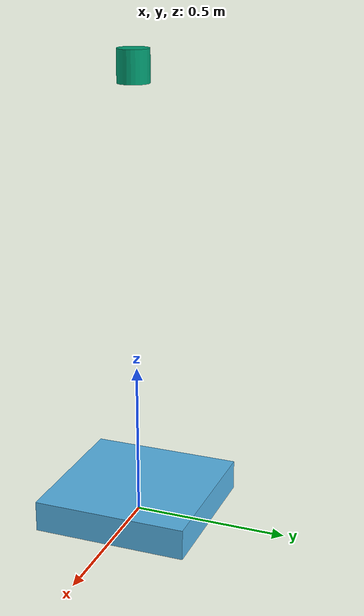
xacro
<?xml version="1.0"?>
<robot xmlns:xacro="http://www.ros.org/wiki/xacro" name="example">
  <xacro:arg name="gpu" default="false"/>
  <xacro:property name="gpu" value="$(arg gpu)"/>

  <!-- Base Footprint -->
  <link name="base_footprint"/>

  <!-- Base Link -->
  <joint name="footprint" type="fixed">
    <parent link="base_footprint"/>
    <child link="base_link"/>
    <origin xyz="0 0 0.05" rpy="0 0 0"/>
  </joint>
  <link name="base_link">
    <visual>
      <geometry>
        <box size="0.5 0.5 0.1"/>
      </geometry>
    </visual>
    <collision>
      <geometry>
        <box size="0.5 0.5 0.1"/>
      </geometry>
    </collision>
    <inertial>
      <origin xyz="0 0 0"/>
      <mass value="10"/>
      <inertia ixx="3.0" ixy="0.0" ixz="0.0" iyy="3.0" iyz="0.0" izz="3.0"/>
    </inertial>
  </link>

  <xacro:include filename="$(find robosense_description)/urdf/RS-5515.urdf.xacro"/>
  <!-- hz: scan rate of lidar. -->
  <!-- samples: no. of points in a horizontal plane. -->
  <!-- gpu: true to use gpu to compute pointcloud-->
  <!-- noise: a greater value would result in more sensor noise -->
  <xacro:RS-5515 parent="base_link" name="helios" hz="10" samples="1800" gpu="false" noise="0.002">
    <origin xyz="0 0 1.35" rpy="0 0 0"/>
  </xacro:RS-5515>

</robot>

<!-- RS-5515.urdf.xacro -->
<robot xmlns:xacro="http://www.ros.org/wiki/xacro" name="RS-5515">
  <xacro:property name="M_PI" value="3.1415926535897931"/>
  <xacro:macro name="RS-5515" params="*origin parent:=base_link name:=robosense hz:=10 samples:=1800 collision_range:=0.4 min_range:=0.1 max_range:=150.0 noise:=0.002 min_angle:=-${M_PI} max_angle:=${M_PI} gpu:=false">

    <joint name="${name}_base_mount_joint" type="fixed">
      <xacro:insert_block name="origin"/>
      <parent link="${parent}"/>
      <child link="${name}_base_link"/>
    </joint>

    <!-- link for bottom of lidar -->
    <link name="${name}_base_link">
      <visual>
        <origin rpy="0 0 0" xyz="0 0 0.05"/>
        <geometry>
          <cylinder radius="0.05" length="0.1"/>
        </geometry>
      </visual>
      <collision>
        <origin rpy="0 0 0" xyz="0 0 0.05"/>
        <geometry>
          <cylinder radius="0.05" length="0.1"/>
        </geometry>
      </collision>
    </link>

    <!-- translation from base of lidar to the mid point of lidar -->
    <joint name="${name}_base_scan_joint" type="fixed">
      <origin xyz="0 0 0.050" rpy="0 0 0"/>
      <parent link="${name}_base_link"/>
      <child link="rslidar"/>
    </joint>

    <!-- main reference frame of all scans -->
    <link name="rslidar"/>

    <xacro:macro name="laserscan" params="name vertmin vertmax layers topic">

      <!-- Gazebo requires the robosense_gazebo_plugins package -->
      <gazebo reference="rslidar">
        <xacro:if value="${gpu}">
          <sensor type="gpu_ray" name="${name}-5515">
            <pose>0 0 0 0 0 0</pose>
            <visualize>false</visualize>
            <update_rate>${hz}</update_rate>
            <ray>
              <scan>
                <horizontal>
                  <samples>${samples}</samples>
                  <resolution>1</resolution>
                  <min_angle>${min_angle}</min_angle>
                  <max_angle>${max_angle}</max_angle>
                </horizontal>
                <vertical>
                  <samples>${layers}</samples>
                  <resolution>1</resolution>

                  <min_angle>${vertmin*M_PI/180.0}</min_angle>
                  <max_angle>${vertmax*M_PI/180.0}</max_angle>
                </vertical>
              </scan>
              <range>
                <min>${collision_range}</min>
                <max>${max_range}</max>
                <resolution>0.001</resolution>
              </range>
              <noise>
                <type>gaussian</type>
                <mean>0.0</mean>
                <stddev>0.0</stddev>
              </noise>
            </ray>
            <plugin name="gazebo_ros_laser_controller" filename="libgazebo_ros_robosense_gpu_laser.so">
              <topicName>${topic}</topicName>
              <frameName>rslidar</frameName>
              <min_range>${min_range}</min_range>
              <max_range>${max_range}</max_range>
              <gaussianNoise>${noise}</gaussianNoise>
            </plugin>
          </sensor>
        </xacro:if>
        <xacro:unless value="${gpu}">
          <sensor type="ray" name="${name}-RS16">
            <pose>0 0 0 0 0 0</pose>
            <visualize>false</visualize>
            <update_rate>${hz}</update_rate>
            <ray>
              <scan>
                <horizontal>
                  <samples>${samples}</samples>
                  <resolution>1</resolution>
                  <min_angle>${min_angle}</min_angle>
                  <max_angle>${max_angle}</max_angle>
                </horizontal>
                <vertical>
                  <samples>${layers}</samples>
                  <resolution>1</resolution>
                  <min_angle>${vertmin*M_PI/180.0}</min_angle>
                  <max_angle>${vertmax*M_PI/180.0}</max_angle>
                </vertical>
              </scan>
              <range>
                <min>${collision_range}</min>
                <max>${max_range+1}</max>
                <resolution>0.001</resolution>
              </range>
              <noise>
                <type>gaussian</type>
                <mean>0.0</mean>
                <stddev>0.0</stddev>
              </noise>
            </ray>
            <plugin name="gazebo_ros_laser_controller" filename="libgazebo_ros_robosense_laser.so">
              <topicName>${topic}</topicName>
              <frameName>rslidar</frameName>
              <min_range>${min_range}</min_range>
              <max_range>${max_range}</max_range>
              <gaussianNoise>${noise}</gaussianNoise>
            </plugin>
          </sensor>
        </xacro:unless>
      </gazebo>
    </xacro:macro>

    <!-- channels from -10 to -55 degree inclusive. 16 laser planes -->
    <xacro:laserscan name="five" vertmin="-55" vertmax="-10" layers="16" topic="five"/>

    <!-- channel at -8 degree inclusive. 1 laser plane -->
    <xacro:laserscan name="four" vertmin="-8" vertmax="-8" layers="1" topic="four"/>

    <!-- channel from 4 to -6.67 degree inclusive. 9 laser planes -->
    <xacro:laserscan name="three" vertmin="-6.67" vertmax="4" layers="9" topic="three"/>

    <!-- channel from 5.5 to 7 degree inclusive. 2 laser planes -->
    <xacro:laserscan name="two" vertmin="5.5" vertmax="7" layers="2" topic="two"/>

    <!-- channel from 9 to 15 degree inclusive. 4 laser planes -->
    <xacro:laserscan name="one" vertmin="9" vertmax="15" layers="4" topic="one"/>

  </xacro:macro>
</robot>
